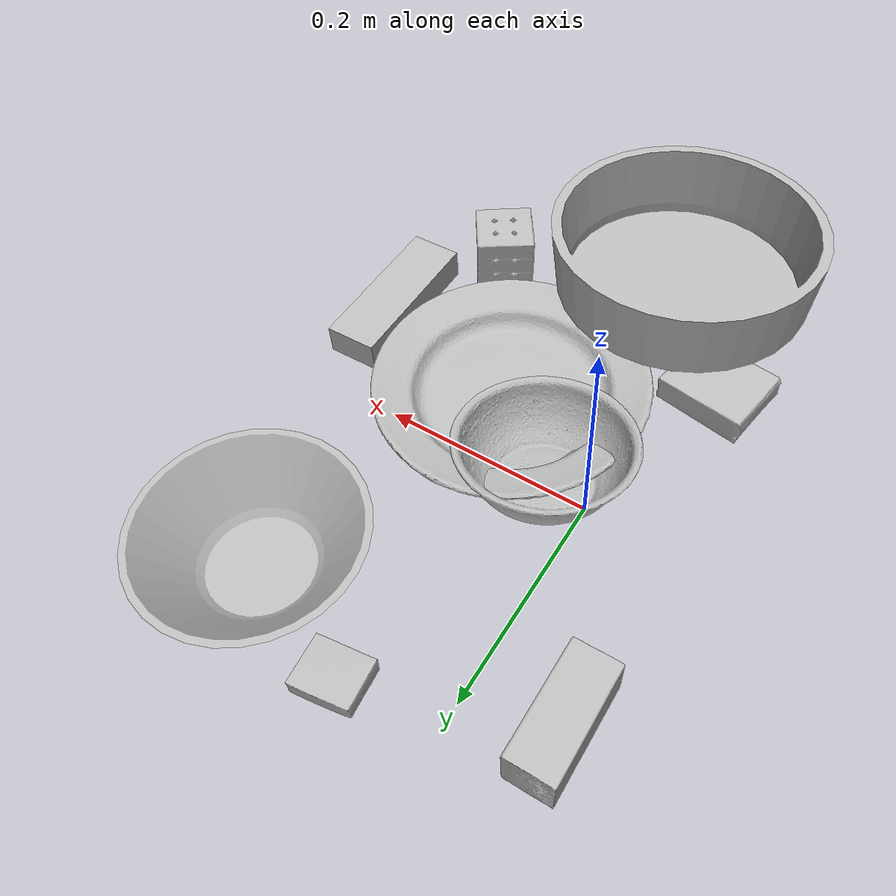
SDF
<sdf version="1.4">
  <world name="default">
    <light name="light1" type="point">
      <pose>0 0 1 0 0 0</pose>
      <diffuse>3 3 3 1</diffuse>
      <specular>3 3 3 1</specular>
    </light>
    <light name="light2" type="point">
      <pose>0 0.5 2 0 0 0</pose>
      <diffuse>1 1 1 1</diffuse>
      <specular>1 1 1 1</specular>
    </light>
    <light name="light3" type="point">
      <pose>0 0.5 2 0 0 0</pose>
      <diffuse>3 3 3 1</diffuse>
      <specular>3 3 3 1</specular>
    </light>
    <scene>
      <ambient>0.7 0.7 0.7</ambient>
    </scene>
    <model name="box1">
      <link name="link_box1">
        <collision name="default">
          <geometry>
            <mesh>
              <uri>model://rubiks_cube/collision_meshes/collision.obj</uri>
              <scale>1.0 1.0 1.0</scale>
            </mesh>
          </geometry>
          <surface>
            <friction>
              <ode>
                <mu>0.5</mu>
                <mu2>0.5</mu2>
              </ode>
            </friction>
          <contact>
        <ode>
            <max_vel>0</max_vel>
            <min_depth>0.0001</min_depth>
            <kp>1e8</kp>
        </ode>
    </contact></surface>
        </collision>
        <visual name="default">
          <geometry>
            <mesh>
              <uri>model://rubiks_cube/visual_meshes/visual.dae</uri>
              <scale>1.0 1.0 1.0</scale>
            </mesh>
          </geometry>
        </visual>
        <inertial>
          <mass>0.14937607944011688</mass>
          <pose>2.6721041649580002e-05 5.256967051536776e-05 -7.264316082000732e-06 -0.054671979216720346 -0.0981390543553378 -0.03445400726577695</pose>
          <inertia>
            <ixx>8.254031e-05</ixx>
            <iyy>8.2155384e-05</iyy>
            <izz>8.32243e-05</izz>
            <ixy>0</ixy>
            <ixz>0</ixz>
            <iyz>0</iyz>
          </inertia>
        </inertial>
      </link>
      <pose>0.21308469772338867 -0.2187255322933197 0.02867898903787136 -3.044500771407432e-06 -8.736987998012014e-07 2.151207340472865</pose>
    </model>
    <model name="box11">
      <link name="link_box11">
        <collision name="default">
          <geometry>
            <mesh>
              <uri>model://gelatin_box/collision_meshes/collision.obj</uri>
              <scale>1.0 1.0 1.0</scale>
            </mesh>
          </geometry>
          <surface>
            <friction>
              <ode>
                <mu>0.5</mu>
                <mu2>0.5</mu2>
              </ode>
            </friction>
          <contact>
        <ode>
            <max_vel>0</max_vel>
            <min_depth>0.0001</min_depth>
            <kp>1e8</kp>
        </ode>
    </contact></surface>
        </collision>
        <visual name="default">
          <geometry>
            <mesh>
              <uri>model://gelatin_box/visual_meshes/visual.dae</uri>
              <scale>1.0 1.0 1.0</scale>
            </mesh>
          </geometry>
        </visual>
        <inertial>
          <mass>0.1927502304315567</mass>
          <pose>0.0004319618456065655 0.00011156871914863586 -0.00036403213744051754 -0.0010503718519204429 -0.00475581822657324 0.016440557608202722</pose>
          <inertia>
            <ixx>0.00013606594</ixx>
            <iyy>9.7191194e-05</iyy>
            <izz>0.00020712269</izz>
            <ixy>0</ixy>
            <ixz>0</ixz>
            <iyz>0</iyz>
          </inertia>
        </inertial>
      </link>
      <pose>-0.04746628925204277 -0.17125871777534485 0.015430329367518425 -0.006816558193613904 0.01302222967786025 -1.7411651202245295</pose>
    </model>
    <model name="box2">
      <link name="link_box2">
        <collision name="default">
          <geometry>
            <mesh>
              <uri>model://jenga/collision_meshes/collision.obj</uri>
              <scale>1.0 1.0 1.0</scale>
            </mesh>
          </geometry>
          <surface>
            <friction>
              <ode>
                <mu>0.5</mu>
                <mu2>0.5</mu2>
              </ode>
            </friction>
          <contact>
        <ode>
            <max_vel>0</max_vel>
            <min_depth>0.0001</min_depth>
            <kp>1e8</kp>
        </ode>
    </contact></surface>
        </collision>
        <visual name="default">
          <geometry>
            <mesh>
              <uri>model://jenga/visual_meshes/visual.dae</uri>
              <scale>1.0 1.0 1.0</scale>
            </mesh>
          </geometry>
        </visual>
        <inertial>
          <mass>0.17753760516643524</mass>
          <pose>-2.5028555228345795e-07 -0.00010250010382151231 -4.0923401684267446e-05 0.0 -7.342155186052628e-07 0.0</pose>
          <inertia>
            <ixx>4.912897e-05</ixx>
            <iyy>0.00033289654</iyy>
            <izz>0.00035539534</izz>
            <ixy>0</ixy>
            <ixz>0</ixz>
            <iyz>0</iyz>
          </inertia>
        </inertial>
      </link>
      <pose>0.2743956446647644 -0.11013106256723404 0.014999997802078724 -1.2290704953320361e-08 6.905221946315862e-09 -1.5582553692740562</pose>
    </model>
    <model name="box21">
      <link name="link_box21">
        <collision name="default">
          <geometry>
            <mesh>
              <uri>model://cracker_box/collision_meshes/collision.obj</uri>
              <scale>0.25 0.25 0.25</scale>
            </mesh>
          </geometry>
          <surface>
            <friction>
              <ode>
                <mu>0.5</mu>
                <mu2>0.5</mu2>
              </ode>
            </friction>
          <contact>
        <ode>
            <max_vel>0</max_vel>
            <min_depth>0.0001</min_depth>
            <kp>1e8</kp>
        </ode>
    </contact></surface>
        </collision>
        <visual name="default">
          <geometry>
            <mesh>
              <uri>model://cracker_box/visual_meshes/visual.dae</uri>
              <scale>0.25 0.25 0.25</scale>
            </mesh>
          </geometry>
        </visual>
        <inertial>
          <mass>0.032025858759880066</mass>
          <pose>0.00023660347505938262 6.358561950037256e-05 -0.0004257383698131889 -0.0003162079452709603 -0.01110648960005095 0.0025467945380896087</pose>
          <inertia>
            <ixx>5.091218e-06</ixx>
            <iyy>8.406602e-06</iyy>
            <izz>1.1996991e-05</izz>
            <ixy>0</ixy>
            <ixz>0</ixz>
            <iyz>0</iyz>
          </inertia>
        </inertial>
      </link>
      <pose>0.06840803474187851 -0.378896027803421 0.009194494225084782 0.004877381368142839 0.0011971835095669384 -3.134701973092724</pose>
    </model>
    <model name="box3">
      <link name="link_box3">
        <collision name="default">
          <geometry>
            <mesh>
              <uri>model://wood_block/collision_meshes/collision.obj</uri>
              <scale>0.5 0.5 0.5</scale>
            </mesh>
          </geometry>
          <surface>
            <friction>
              <ode>
                <mu>0.5</mu>
                <mu2>0.5</mu2>
              </ode>
            </friction>
          <contact>
        <ode>
            <max_vel>0</max_vel>
            <min_depth>0.0001</min_depth>
            <kp>1e8</kp>
        </ode>
    </contact></surface>
        </collision>
        <visual name="default">
          <geometry>
            <mesh>
              <uri>model://wood_block/visual_meshes/visual.dae</uri>
              <scale>0.5 0.5 0.5</scale>
            </mesh>
          </geometry>
        </visual>
        <inertial>
          <mass>0.12936852872371674</mass>
          <pose>-2.9066577553749084e-06 -0.00028540470520965755 0.00013204290007706732 -0.052209755292171825 -0.0051926950820086835 -0.006861377939779924</pose>
          <inertia>
            <ixx>4.327867e-05</ixx>
            <iyy>0.00013671734</iyy>
            <izz>0.00013620593</izz>
            <ixy>0</ixy>
            <ixz>0</ixz>
            <iyz>0</iyz>
          </inertia>
        </inertial>
      </link>
      <pose>-0.07781223952770233 0.1775086373090744 0.02262926660478115 -0.0052086009443871985 0.005718784159864091 1.5739836604144664</pose>
    </model>
    <model name="box31">
      <link name="link_box31">
        <collision name="default">
          <geometry>
            <mesh>
              <uri>model://pudding_box/collision_meshes/collision.obj</uri>
              <scale>0.5 0.5 0.5</scale>
            </mesh>
          </geometry>
          <surface>
            <friction>
              <ode>
                <mu>0.5</mu>
                <mu2>0.5</mu2>
              </ode>
            </friction>
          <contact>
        <ode>
            <max_vel>0</max_vel>
            <min_depth>0.0001</min_depth>
            <kp>1e8</kp>
        </ode>
    </contact></surface>
        </collision>
        <visual name="default">
          <geometry>
            <mesh>
              <uri>model://pudding_box/visual_meshes/visual.dae</uri>
              <scale>0.5 0.5 0.5</scale>
            </mesh>
          </geometry>
        </visual>
        <inertial>
          <mass>0.02777985855937004</mass>
          <pose>0.00024474109522998333 0.00040339428232982755 -0.0002594413817860186 0.005213100847255284 -0.006603800106148706 0.020079825159203687</pose>
          <inertia>
            <ixx>7.850925e-06</ixx>
            <iyy>5.282159e-06</iyy>
            <izz>1.1593943e-05</izz>
            <ixy>0</ixy>
            <ixz>0</ixz>
            <iyz>0</iyz>
          </inertia>
        </inertial>
      </link>
      <pose>0.09031330049037933 0.2324422001838684 0.009862902574241161 0.02234852425035421 -0.011391683389028334 1.6834629947755404</pose>
    </model>
    <model name="plate1">
      <link name="link_plate1">
        <collision name="default">
          <geometry>
            <mesh>
              <uri>model://plate/collision_meshes/collision.obj</uri>
              <scale>1.0 1.0 1.0</scale>
            </mesh>
          </geometry>
          <surface>
            <friction>
              <ode>
                <mu>0.5</mu>
                <mu2>0.5</mu2>
              </ode>
            </friction>
          <contact>
        <ode>
            <max_vel>0</max_vel>
            <min_depth>0.0001</min_depth>
            <kp>1e8</kp>
        </ode>
    </contact></surface>
        </collision>
        <visual name="default">
          <geometry>
            <mesh>
              <uri>model://plate/visual_meshes/visual.dae</uri>
              <scale>1.0 1.0 1.0</scale>
            </mesh>
          </geometry>
        </visual>
        <inertial>
          <mass>0.18243028223514557</mass>
          <pose>-0.0006044635083526373 0.00027825916185975075 -0.0010561967501416802 0.002218802985991306 -0.003225472580220492 0.4526054178664253</pose>
          <inertia>
            <ixx>0.00085341244</ixx>
            <iyy>0.00084524986</iyy>
            <izz>0.0016691468</izz>
            <ixy>0</ixy>
            <ixz>0</ixz>
            <iyz>0</iyz>
          </inertia>
        </inertial>
      </link>
      <pose>0.11762726306915283 -0.07503993809223175 0.013763357885181904 0.00032427030369002374 0.00025820222041723705 0.13961400026604878</pose>
    </model>
    <model name="bowl1">
      <link name="link_bowl1">
        <collision name="default">
          <geometry>
            <mesh>
              <uri>model://bowl_a/collision_meshes/collision.obj</uri>
              <scale>1.0 1.0 1.0</scale>
            </mesh>
          </geometry>
          <surface>
            <friction>
              <ode>
                <mu>0.5</mu>
                <mu2>0.5</mu2>
              </ode>
            </friction>
          <contact>
        <ode>
            <max_vel>0</max_vel>
            <min_depth>0.0001</min_depth>
            <kp>1e8</kp>
        </ode>
    </contact></surface>
        </collision>
        <visual name="default">
          <geometry>
            <mesh>
              <uri>model://bowl_a/visual_meshes/visual.dae</uri>
              <scale>1.0 1.0 1.0</scale>
            </mesh>
          </geometry>
        </visual>
        <inertial>
          <mass>0.33530884981155396</mass>
          <pose>0.00027867525932379067 4.7312179958680645e-05 -0.0013765293406322598 -0.0009805353119733814 -0.0010938238033148682 -0.19123781325276382</pose>
          <inertia>
            <ixx>0.0009546399</ixx>
            <iyy>0.0009605007</iyy>
            <izz>0.0016978635</izz>
            <ixy>0</ixy>
            <ixz>0</ixz>
            <iyz>0</iyz>
          </inertia>
        </inertial>
      </link>
      <pose>0.20096364617347717 0.18578025698661804 0.030382994562387466 -1.9489258296610804e-08 2.2759662467779247e-09 0.7699554692454875</pose>
    </model>
    <model name="plate2">
      <link name="link_plate2">
        <collision name="default">
          <geometry>
            <mesh>
              <uri>model://pan_tefal/collision_meshes/collision.obj</uri>
              <scale>1.0 1.0 1.0</scale>
            </mesh>
          </geometry>
          <surface>
            <friction>
              <ode>
                <mu>0.5</mu>
                <mu2>0.5</mu2>
              </ode>
            </friction>
          <contact>
        <ode>
            <max_vel>0</max_vel>
            <min_depth>0.0001</min_depth>
            <kp>1e8</kp>
        </ode>
    </contact></surface>
        </collision>
        <visual name="default">
          <geometry>
            <mesh>
              <uri>model://pan_tefal/visual_meshes/visual.dae</uri>
              <scale>1.0 1.0 1.0</scale>
            </mesh>
          </geometry>
        </visual>
        <inertial>
          <mass>1.3054066896438599</mass>
          <pose>-0.00018001779972109944 3.2791245757834986e-05 -0.008514936082065105 0.0008190347553724757 -0.0003301394488099971 -0.33186691456643896</pose>
          <inertia>
            <ixx>0.00901116</ixx>
            <iyy>0.009069256</iyy>
            <izz>0.016587809</izz>
            <ixy>0</ixy>
            <ixz>0</ixz>
            <iyz>0</iyz>
          </inertia>
        </inertial>
      </link>
      <pose>0.03650737926363945 -0.2676411271095276 0.06223700940608978 -0.04972939499022956 0.03447511014194293 -2.061093077533431</pose>
    </model>
    <model name="bowl2">
      <link name="link_bowl2">
        <collision name="default">
          <geometry>
            <mesh>
              <uri>model://bowl/collision_meshes/collision.obj</uri>
              <scale>1.0 1.0 1.0</scale>
            </mesh>
          </geometry>
          <surface>
            <friction>
              <ode>
                <mu>0.5</mu>
                <mu2>0.5</mu2>
              </ode>
            </friction>
          <contact>
        <ode>
            <max_vel>0</max_vel>
            <min_depth>0.0001</min_depth>
            <kp>1e8</kp>
        </ode>
    </contact></surface>
        </collision>
        <visual name="default">
          <geometry>
            <mesh>
              <uri>model://bowl/visual_meshes/visual.dae</uri>
              <scale>1.0 1.0 1.0</scale>
            </mesh>
          </geometry>
        </visual>
        <inertial>
          <mass>0.1096961572766304</mass>
          <pose>0.00020445209520403296 -0.0010302049340680242 -0.0008042648551054299 -0.015764066902751193 0.014546817497496476 0.7140421604823016</pose>
          <inertia>
            <ixx>0.00025198064</ixx>
            <iyy>0.00024635042</iyy>
            <izz>0.0004239182</izz>
            <ixy>0</ixy>
            <ixz>0</ixz>
            <iyz>0</iyz>
          </inertia>
        </inertial>
      </link>
      <pose>0.041635170578956604 -0.0029934567864984274 0.03713421896100044 -0.022890516778115294 -0.15210593119826046 2.1144244564396826</pose>
    </model>
  <physics type="ode">
      <max_contacts>50</max_contacts>
      <ode>
        <solver>
          <type>quick</type>
          <iters>75</iters>
        </solver>
        <constraints>
          <contact_max_correcting_vel>0</contact_max_correcting_vel>
          <contact_surface_layer>0</contact_surface_layer>
        </constraints>
      </ode>
    </physics></world>
</sdf>
